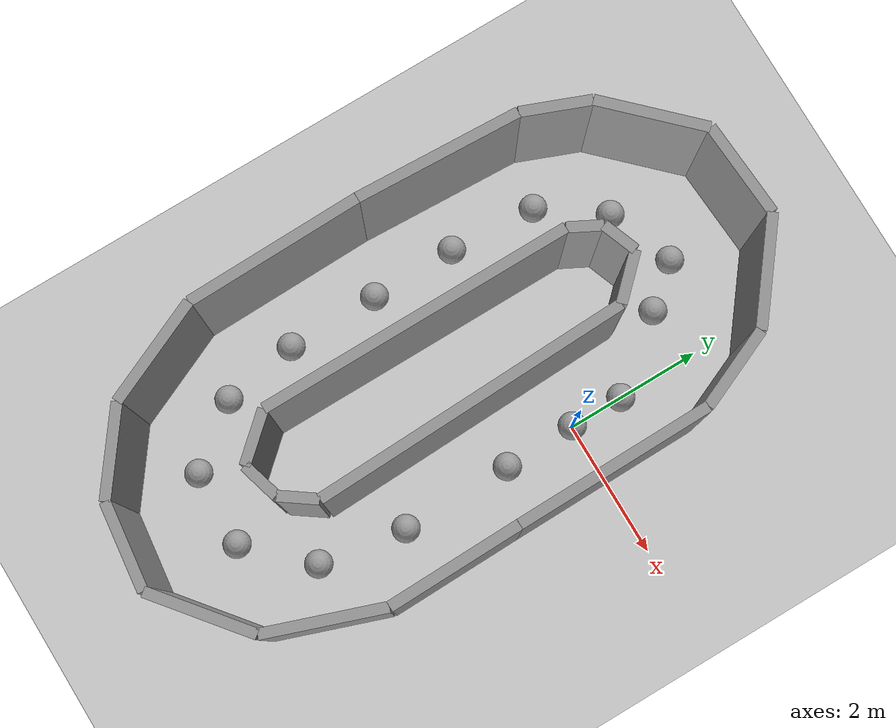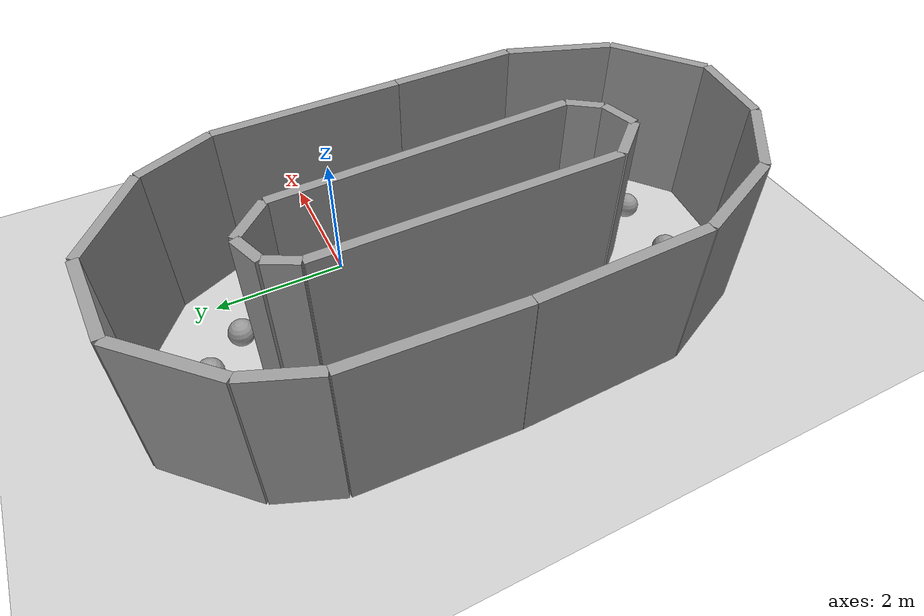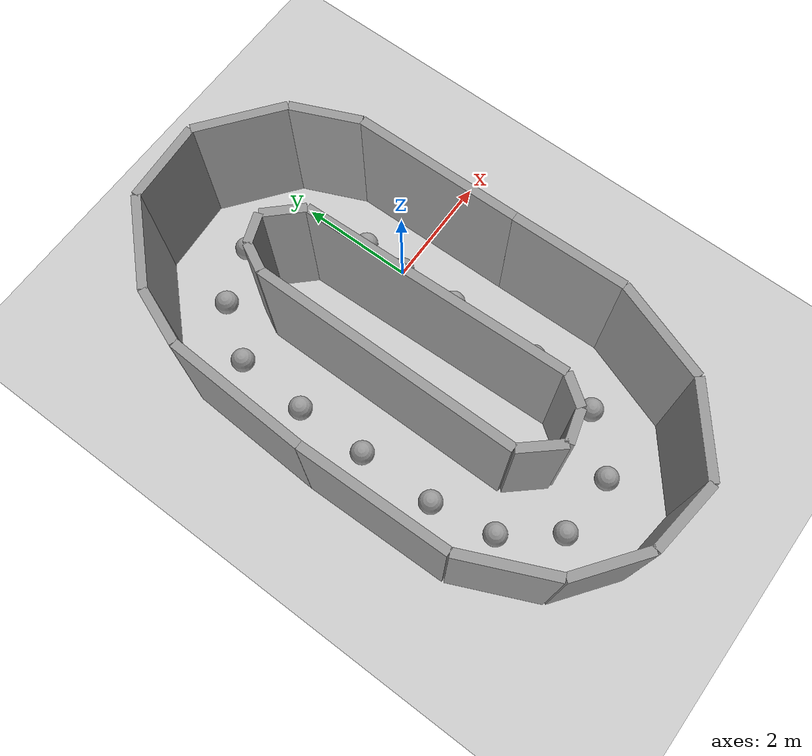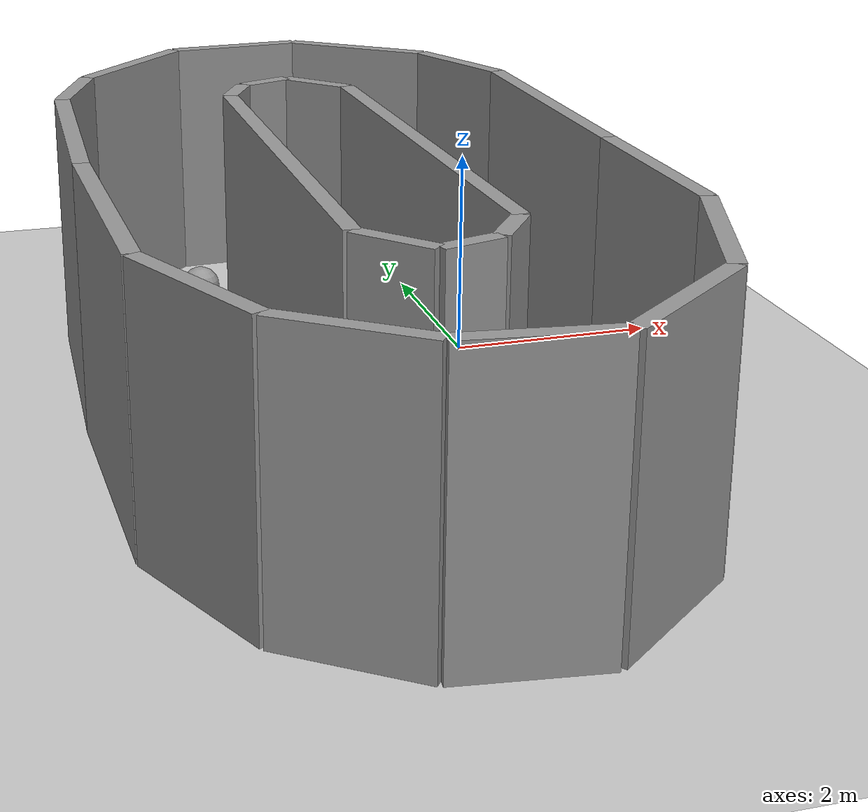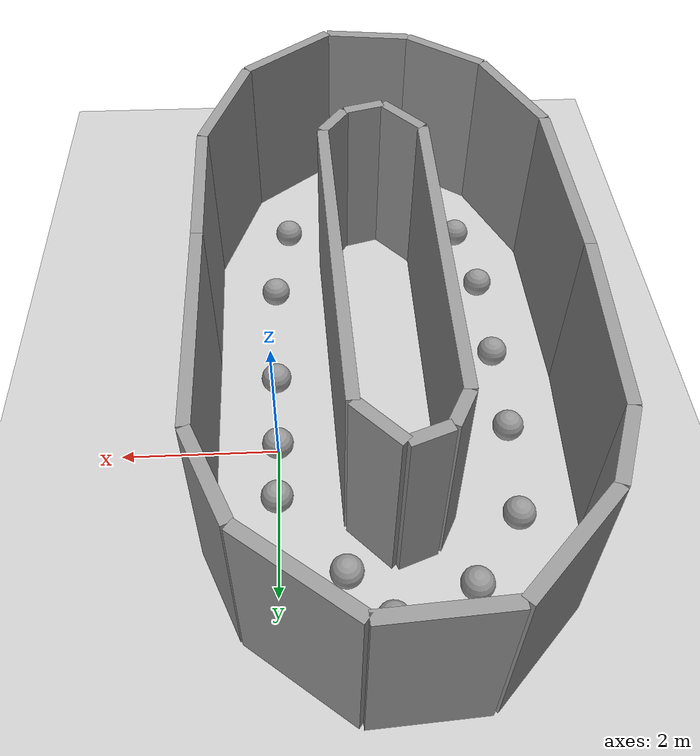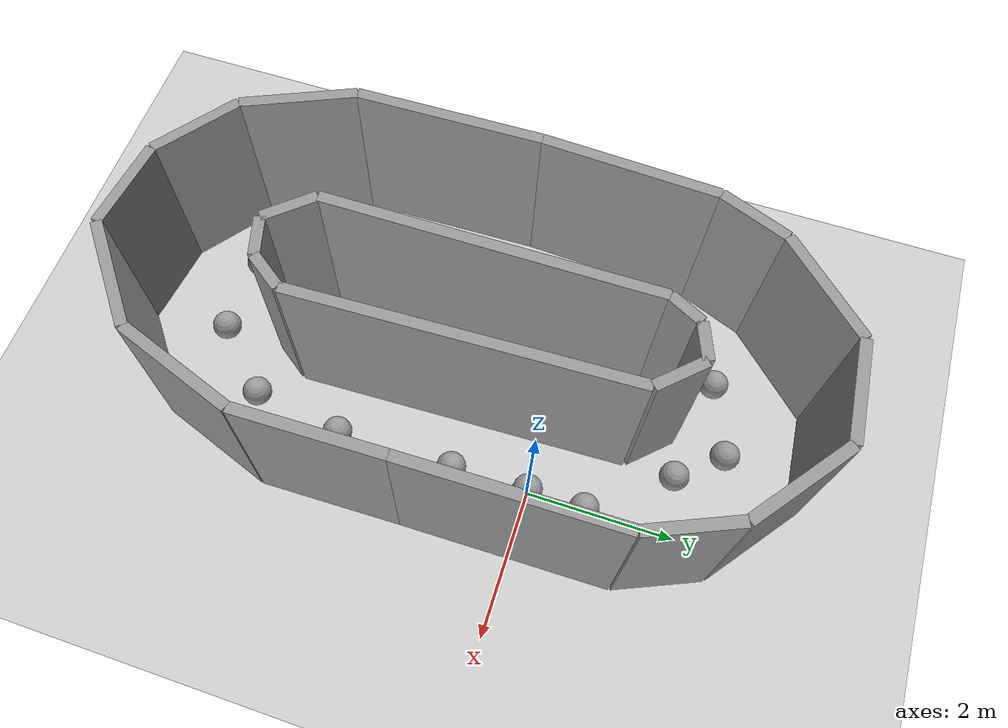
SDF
<sdf version='1.6'>
    <world name='default'>
      <light name='sun' type='directional'>
        <cast_shadows>1</cast_shadows>
        <pose frame=''>0 0 10 0 -0 0</pose>
        <diffuse>0.8 0.8 0.8 1</diffuse>
        <specular>0.2 0.2 0.2 1</specular>
        <attenuation>
          <range>1000</range>
          <constant>0.9</constant>
          <linear>0.01</linear>
          <quadratic>0.001</quadratic>
        </attenuation>
        <direction>-0.5 0.1 -0.9</direction>
      </light>
      <model name='ground_plane'>
        <static>1</static>
        <link name='link'>
          <collision name='collision'>
            <geometry>
              <plane>
                <normal>0 0 1</normal>
                <size>100 100</size>
              </plane>
            </geometry>
            <surface>
              <friction>
                <ode>
                  <mu>100</mu>
                  <mu2>50</mu2>
                </ode>
                <torsional>
                  <ode/>
                </torsional>
              </friction>
              <contact>
                <ode/>
              </contact>
              <bounce/>
            </surface>
            <max_contacts>10</max_contacts>
          </collision>
          <visual name='visual'>
            <cast_shadows>0</cast_shadows>
            <geometry>
              <plane>
                <normal>0 0 1</normal>
                <size>100 100</size>
              </plane>
            </geometry>
            <material>
              <script>
                <uri>file://media/materials/scripts/gazebo.material</uri>
                <name>Gazebo/Grey</name>
              </script>
            </material>
          </visual>
          <self_collide>0</self_collide>
          <enable_wind>0</enable_wind>
          <kinematic>0</kinematic>
        </link>
      </model>
      <gravity>0 0 -9.8</gravity>
      <magnetic_field>6e-06 2.3e-05 -4.2e-05</magnetic_field>
      <atmosphere type='adiabatic'/>
      <physics name='default_physics' default='0' type='ode'>
        <max_step_size>0.001</max_step_size>
        <real_time_factor>1</real_time_factor>
        <real_time_update_rate>1000</real_time_update_rate>
      </physics>
      <scene>
        <ambient>0.4 0.4 0.4 1</ambient>
        <background>0.7 0.7 0.7 1</background>
        <shadows>1</shadows>
      </scene>
      <wind/>
      <spherical_coordinates>
        <surface_model>EARTH_WGS84</surface_model>
        <latitude_deg>0</latitude_deg>
        <longitude_deg>0</longitude_deg>
        <elevation>0</elevation>
        <heading_deg>0</heading_deg>
      </spherical_coordinates>
      <model name='track2'>
        <pose frame=''>0 0 0 0 -0 0</pose>
        <link name='wall_000'>
                <collision name='wall_000_Collision'>
                <geometry>
                    <box>
                    <size>1.195634 0.15 2.5</size>
                    </box>
                </geometry>
                <pose frame=''>0 0 1.25 0 -0 0</pose>
                <max_contacts>10</max_contacts>
                <surface>
                    <contact>
                    <ode/>
                    </contact>
                    <bounce/>
                    <friction>
                    <torsional>
                        <ode/>
                    </torsional>
                    <ode/>
                    </friction>
                </surface>
                </collision>
                <visual name='wall_000_Visual'>
                <pose frame=''>0 0 1.25 0 -0 0</pose>
                <geometry>
                    <box>
                    <size>1.195634 0.15 2.5</size>
                    </box>
                </geometry>
                <material>
                    <script>
                    <uri>file://media/materials/scripts/gazebo.material</uri>
                    <name>Gazebo/Grey</name>
                    </script>
                    <ambient>1 1 1 1</ambient>
                </material>
                <meta>
                    <layer>0</layer>
                </meta>
                </visual>
                <pose frame=''>0.586740 1.912500 0 0 -0 -1.157576</pose>
                <self_collide>0</self_collide>
                <enable_wind>0</enable_wind>
                <kinematic>0</kinematic>
            </link>
            <link name='wall_001'>
                <collision name='wall_001_Collision'>
                <geometry>
                    <box>
                    <size>1.548632 0.15 2.5</size>
                    </box>
                </geometry>
                <pose frame=''>0 0 1.25 0 -0 0</pose>
                <max_contacts>10</max_contacts>
                <surface>
                    <contact>
                    <ode/>
                    </contact>
                    <bounce/>
                    <friction>
                    <torsional>
                        <ode/>
                    </torsional>
                    <ode/>
                    </friction>
                </surface>
                </collision>
                <visual name='wall_001_Visual'>
                <pose frame=''>0 0 1.25 0 -0 0</pose>
                <geometry>
                    <box>
                    <size>1.548632 0.15 2.5</size>
                    </box>
                </geometry>
                <material>
                    <script>
                    <uri>file://media/materials/scripts/gazebo.material</uri>
                    <name>Gazebo/Grey</name>
                    </script>
                    <ambient>1 1 1 1</ambient>
                </material>
                <meta>
                    <layer>0</layer>
                </meta>
                </visual>
                <pose frame=''>-0.266760 2.932500 0 0 -0 -0.656333</pose>
                <self_collide>0</self_collide>
                <enable_wind>0</enable_wind>
                <kinematic>0</kinematic>
            </link>
            <link name='wall_002'>
                <collision name='wall_002_Collision'>
                <geometry>
                    <box>
                    <size>1.362576 0.15 2.5</size>
                    </box>
                </geometry>
                <pose frame=''>0 0 1.25 0 -0 0</pose>
                <max_contacts>10</max_contacts>
                <surface>
                    <contact>
                    <ode/>
                    </contact>
                    <bounce/>
                    <friction>
                    <torsional>
                        <ode/>
                    </torsional>
                    <ode/>
                    </friction>
                </surface>
                </collision>
                <visual name='wall_002_Visual'>
                <pose frame=''>0 0 1.25 0 -0 0</pose>
                <geometry>
                    <box>
                    <size>1.362576 0.15 2.5</size>
                    </box>
                </geometry>
                <material>
                    <script>
                    <uri>file://media/materials/scripts/gazebo.material</uri>
                    <name>Gazebo/Grey</name>
                    </script>
                    <ambient>1 1 1 1</ambient>
                </material>
                <meta>
                    <layer>0</layer>
                </meta>
                </visual>
                <pose frame=''>-1.560000 3.360000 0 0 -0 0.066100</pose>
                <self_collide>0</self_collide>
                <enable_wind>0</enable_wind>
                <kinematic>0</kinematic>
            </link>
            <link name='wall_003'>
                <collision name='wall_003_Collision'>
                <geometry>
                    <box>
                    <size>1.558364 0.15 2.5</size>
                    </box>
                </geometry>
                <pose frame=''>0 0 1.25 0 -0 0</pose>
                <max_contacts>10</max_contacts>
                <surface>
                    <contact>
                    <ode/>
                    </contact>
                    <bounce/>
                    <friction>
                    <torsional>
                        <ode/>
                    </torsional>
                    <ode/>
                    </friction>
                </surface>
                </collision>
                <visual name='wall_003_Visual'>
                <pose frame=''>0 0 1.25 0 -0 0</pose>
                <geometry>
                    <box>
                    <size>1.558364 0.15 2.5</size>
                    </box>
                </geometry>
                <material>
                    <script>
                    <uri>file://media/materials/scripts/gazebo.material</uri>
                    <name>Gazebo/Grey</name>
                    </script>
                    <ambient>1 1 1 1</ambient>
                </material>
                <meta>
                    <layer>0</layer>
                </meta>
                </visual>
                <pose frame=''>-2.786700 2.760000 0 0 -0 0.792749</pose>
                <self_collide>0</self_collide>
                <enable_wind>0</enable_wind>
                <kinematic>0</kinematic>
            </link>
            <link name='wall_004'>
                <collision name='wall_004_Collision'>
                <geometry>
                    <box>
                    <size>0.983273 0.15 2.5</size>
                    </box>
                </geometry>
                <pose frame=''>0 0 1.25 0 -0 0</pose>
                <max_contacts>10</max_contacts>
                <surface>
                    <contact>
                    <ode/>
                    </contact>
                    <bounce/>
                    <friction>
                    <torsional>
                        <ode/>
                    </torsional>
                    <ode/>
                    </friction>
                </surface>
                </collision>
                <visual name='wall_004_Visual'>
                <pose frame=''>0 0 1.25 0 -0 0</pose>
                <geometry>
                    <box>
                    <size>0.983273 0.15 2.5</size>
                    </box>
                </geometry>
                <material>
                    <script>
                    <uri>file://media/materials/scripts/gazebo.material</uri>
                    <name>Gazebo/Grey</name>
                    </script>
                    <ambient>1 1 1 1</ambient>
                </material>
                <meta>
                    <layer>0</layer>
                </meta>
                </visual>
                <pose frame=''>-3.513600 1.747500 0 0 -0 1.195956</pose>
                <self_collide>0</self_collide>
                <enable_wind>0</enable_wind>
                <kinematic>0</kinematic>
            </link>
            <link name='wall_005'>
                <collision name='wall_005_Collision'>
                <geometry>
                    <box>
                    <size>2.372378 0.15 2.5</size>
                    </box>
                </geometry>
                <pose frame=''>0 0 1.25 0 -0 0</pose>
                <max_contacts>10</max_contacts>
                <surface>
                    <contact>
                    <ode/>
                    </contact>
                    <bounce/>
                    <friction>
                    <torsional>
                        <ode/>
                    </torsional>
                    <ode/>
                    </friction>
                </surface>
                </collision>
                <visual name='wall_005_Visual'>
                <pose frame=''>0 0 1.25 0 -0 0</pose>
                <geometry>
                    <box>
                    <size>2.372378 0.15 2.5</size>
                    </box>
                </geometry>
                <material>
                    <script>
                    <uri>file://media/materials/scripts/gazebo.material</uri>
                    <name>Gazebo/Grey</name>
                    </script>
                    <ambient>1 1 1 1</ambient>
                </material>
                <meta>
                    <layer>0</layer>
                </meta>
                </visual>
                <pose frame=''>-3.746700 0.105000 0 0 -0 1.526016</pose>
                <self_collide>0</self_collide>
                <enable_wind>0</enable_wind>
                <kinematic>0</kinematic>
            </link>
            <link name='wall_006'>
                <collision name='wall_006_Collision'>
                <geometry>
                    <box>
                    <size>2.535562 0.15 2.5</size>
                    </box>
                </geometry>
                <pose frame=''>0 0 1.25 0 -0 0</pose>
                <max_contacts>10</max_contacts>
                <surface>
                    <contact>
                    <ode/>
                    </contact>
                    <bounce/>
                    <friction>
                    <torsional>
                        <ode/>
                    </torsional>
                    <ode/>
                    </friction>
                </surface>
                </collision>
                <visual name='wall_006_Visual'>
                <pose frame=''>0 0 1.25 0 -0 0</pose>
                <geometry>
                    <box>
                    <size>2.535562 0.15 2.5</size>
                    </box>
                </geometry>
                <material>
                    <script>
                    <uri>file://media/materials/scripts/gazebo.material</uri>
                    <name>Gazebo/Grey</name>
                    </script>
                    <ambient>1 1 1 1</ambient>
                </material>
                <meta>
                    <layer>0</layer>
                </meta>
                </visual>
                <pose frame=''>-3.773100 -2.347500 0 0 -0 1.591858</pose>
                <self_collide>0</self_collide>
                <enable_wind>0</enable_wind>
                <kinematic>0</kinematic>
            </link>
            <link name='wall_007'>
                <collision name='wall_007_Collision'>
                <geometry>
                    <box>
                    <size>1.561958 0.15 2.5</size>
                    </box>
                </geometry>
                <pose frame=''>0 0 1.25 0 -0 0</pose>
                <max_contacts>10</max_contacts>
                <surface>
                    <contact>
                    <ode/>
                    </contact>
                    <bounce/>
                    <friction>
                    <torsional>
                        <ode/>
                    </torsional>
                    <ode/>
                    </friction>
                </surface>
                </collision>
                <visual name='wall_007_Visual'>
                <pose frame=''>0 0 1.25 0 -0 0</pose>
                <geometry>
                    <box>
                    <size>1.561958 0.15 2.5</size>
                    </box>
                </geometry>
                <material>
                    <script>
                    <uri>file://media/materials/scripts/gazebo.material</uri>
                    <name>Gazebo/Grey</name>
                    </script>
                    <ambient>1 1 1 1</ambient>
                </material>
                <meta>
                    <layer>0</layer>
                </meta>
                </visual>
                <pose frame=''>-3.426600 -4.327500 0 0 -0 1.992687</pose>
                <self_collide>0</self_collide>
                <enable_wind>0</enable_wind>
                <kinematic>0</kinematic>
            </link>
            <link name='wall_008'>
                <collision name='wall_008_Collision'>
                <geometry>
                    <box>
                    <size>1.280286 0.15 2.5</size>
                    </box>
                </geometry>
                <pose frame=''>0 0 1.25 0 -0 0</pose>
                <max_contacts>10</max_contacts>
                <surface>
                    <contact>
                    <ode/>
                    </contact>
                    <bounce/>
                    <friction>
                    <torsional>
                        <ode/>
                    </torsional>
                    <ode/>
                    </friction>
                </surface>
                </collision>
                <visual name='wall_008_Visual'>
                <pose frame=''>0 0 1.25 0 -0 0</pose>
                <geometry>
                    <box>
                    <size>1.280286 0.15 2.5</size>
                    </box>
                </geometry>
                <material>
                    <script>
                    <uri>file://media/materials/scripts/gazebo.material</uri>
                    <name>Gazebo/Grey</name>
                    </script>
                    <ambient>1 1 1 1</ambient>
                </material>
                <meta>
                    <layer>0</layer>
                </meta>
                </visual>
                <pose frame=''>-2.593500 -5.422500 0 0 -0 2.501185</pose>
                <self_collide>0</self_collide>
                <enable_wind>0</enable_wind>
                <kinematic>0</kinematic>
            </link>
            <link name='wall_009'>
                <collision name='wall_009_Collision'>
                <geometry>
                    <box>
                    <size>1.236135 0.15 2.5</size>
                    </box>
                </geometry>
                <pose frame=''>0 0 1.25 0 -0 0</pose>
                <max_contacts>10</max_contacts>
                <surface>
                    <contact>
                    <ode/>
                    </contact>
                    <bounce/>
                    <friction>
                    <torsional>
                        <ode/>
                    </torsional>
                    <ode/>
                    </friction>
                </surface>
                </collision>
                <visual name='wall_009_Visual'>
                <pose frame=''>0 0 1.25 0 -0 0</pose>
                <geometry>
                    <box>
                    <size>1.236135 0.15 2.5</size>
                    </box>
                </geometry>
                <material>
                    <script>
                    <uri>file://media/materials/scripts/gazebo.material</uri>
                    <name>Gazebo/Grey</name>
                    </script>
                    <ambient>1 1 1 1</ambient>
                </material>
                <meta>
                    <layer>0</layer>
                </meta>
                </visual>
                <pose frame=''>-1.466700 -5.880000 0 0 -0 3.019947</pose>
                <self_collide>0</self_collide>
                <enable_wind>0</enable_wind>
                <kinematic>0</kinematic>
            </link>
            <link name='wall_010'>
                <collision name='wall_010_Collision'>
                <geometry>
                    <box>
                    <size>1.536656 0.15 2.5</size>
                    </box>
                </geometry>
                <pose frame=''>0 0 1.25 0 -0 0</pose>
                <max_contacts>10</max_contacts>
                <surface>
                    <contact>
                    <ode/>
                    </contact>
                    <bounce/>
                    <friction>
                    <torsional>
                        <ode/>
                    </torsional>
                    <ode/>
                    </friction>
                </surface>
                </collision>
                <visual name='wall_010_Visual'>
                <pose frame=''>0 0 1.25 0 -0 0</pose>
                <geometry>
                    <box>
                    <size>1.536656 0.15 2.5</size>
                    </box>
                </geometry>
                <material>
                    <script>
                    <uri>file://media/materials/scripts/gazebo.material</uri>
                    <name>Gazebo/Grey</name>
                    </script>
                    <ambient>1 1 1 1</ambient>
                </material>
                <meta>
                    <layer>0</layer>
                </meta>
                </visual>
                <pose frame=''>-0.253260 -5.475000 0 0 -0 -2.466803</pose>
                <self_collide>0</self_collide>
                <enable_wind>0</enable_wind>
                <kinematic>0</kinematic>
            </link>
            <link name='wall_011'>
                <collision name='wall_011_Collision'>
                <geometry>
                    <box>
                    <size>1.685708 0.15 2.5</size>
                    </box>
                </geometry>
                <pose frame=''>0 0 1.25 0 -0 0</pose>
                <max_contacts>10</max_contacts>
                <surface>
                    <contact>
                    <ode/>
                    </contact>
                    <bounce/>
                    <friction>
                    <torsional>
                        <ode/>
                    </torsional>
                    <ode/>
                    </friction>
                </surface>
                </collision>
                <visual name='wall_011_Visual'>
                <pose frame=''>0 0 1.25 0 -0 0</pose>
                <geometry>
                    <box>
                    <size>1.685708 0.15 2.5</size>
                    </box>
                </geometry>
                <material>
                    <script>
                    <uri>file://media/materials/scripts/gazebo.material</uri>
                    <name>Gazebo/Grey</name>
                    </script>
                    <ambient>1 1 1 1</ambient>
                </material>
                <meta>
                    <layer>0</layer>
                </meta>
                </visual>
                <pose frame=''>0.626640 -4.200000 0 0 -0 -1.909386</pose>
                <self_collide>0</self_collide>
                <enable_wind>0</enable_wind>
                <kinematic>0</kinematic>
            </link>
            <link name='wall_012'>
                <collision name='wall_012_Collision'>
                <geometry>
                    <box>
                    <size>1.935418 0.15 2.5</size>
                    </box>
                </geometry>
                <pose frame=''>0 0 1.25 0 -0 0</pose>
                <max_contacts>10</max_contacts>
                <surface>
                    <contact>
                    <ode/>
                    </contact>
                    <bounce/>
                    <friction>
                    <torsional>
                        <ode/>
                    </torsional>
                    <ode/>
                    </friction>
                </surface>
                </collision>
                <visual name='wall_012_Visual'>
                <pose frame=''>0 0 1.25 0 -0 0</pose>
                <geometry>
                    <box>
                    <size>1.935418 0.15 2.5</size>
                    </box>
                </geometry>
                <material>
                    <script>
                    <uri>file://media/materials/scripts/gazebo.material</uri>
                    <name>Gazebo/Grey</name>
                    </script>
                    <ambient>1 1 1 1</ambient>
                </material>
                <meta>
                    <layer>0</layer>
                </meta>
                </visual>
                <pose frame=''>0.886500 -2.437500 0 0 -0 -1.550024</pose>
                <self_collide>0</self_collide>
                <enable_wind>0</enable_wind>
                <kinematic>0</kinematic>
            </link>
            <link name='wall_013'>
                <collision name='wall_013_Collision'>
                <geometry>
                    <box>
                    <size>2.835277 0.15 2.5</size>
                    </box>
                </geometry>
                <pose frame=''>0 0 1.25 0 -0 0</pose>
                <max_contacts>10</max_contacts>
                <surface>
                    <contact>
                    <ode/>
                    </contact>
                    <bounce/>
                    <friction>
                    <torsional>
                        <ode/>
                    </torsional>
                    <ode/>
                    </friction>
                </surface>
                </collision>
                <visual name='wall_013_Visual'>
                <pose frame=''>0 0 1.25 0 -0 0</pose>
                <geometry>
                    <box>
                    <size>2.835277 0.15 2.5</size>
                    </box>
                </geometry>
                <material>
                    <script>
                    <uri>file://media/materials/scripts/gazebo.material</uri>
                    <name>Gazebo/Grey</name>
                    </script>
                    <ambient>1 1 1 1</ambient>
                </material>
                <meta>
                    <layer>0</layer>
                </meta>
                </visual>
                <pose frame=''>0.846600 -0.052500 0 0 -0 -1.556829</pose>
                <self_collide>0</self_collide>
                <enable_wind>0</enable_wind>
                <kinematic>0</kinematic>
            </link>
            <link name='wall_014'>
                <collision name='wall_014_Collision'>
                <geometry>
                    <box>
                    <size>0.729845 0.15 2.5</size>
                    </box>
                </geometry>
                <pose frame=''>0 0 1.25 0 -0 0</pose>
                <max_contacts>10</max_contacts>
                <surface>
                    <contact>
                    <ode/>
                    </contact>
                    <bounce/>
                    <friction>
                    <torsional>
                        <ode/>
                    </torsional>
                    <ode/>
                    </friction>
                </surface>
                </collision>
                <visual name='wall_014_Visual'>
                <pose frame=''>0 0 1.25 0 -0 0</pose>
                <geometry>
                    <box>
                    <size>0.729845 0.15 2.5</size>
                    </box>
                </geometry>
                <material>
                    <script>
                    <uri>file://media/materials/scripts/gazebo.material</uri>
                    <name>Gazebo/Grey</name>
                    </script>
                    <ambient>1 1 1 1</ambient>
                </material>
                <meta>
                    <layer>0</layer>
                </meta>
                </visual>
                <pose frame=''>-1.119900 1.372500 0 0 -0 -0.802838</pose>
                <self_collide>0</self_collide>
                <enable_wind>0</enable_wind>
                <kinematic>0</kinematic>
            </link>
            <link name='wall_015'>
                <collision name='wall_015_Collision'>
                <geometry>
                    <box>
                    <size>0.512640 0.15 2.5</size>
                    </box>
                </geometry>
                <pose frame=''>0 0 1.25 0 -0 0</pose>
                <max_contacts>10</max_contacts>
                <surface>
                    <contact>
                    <ode/>
                    </contact>
                    <bounce/>
                    <friction>
                    <torsional>
                        <ode/>
                    </torsional>
                    <ode/>
                    </friction>
                </surface>
                </collision>
                <visual name='wall_015_Visual'>
                <pose frame=''>0 0 1.25 0 -0 0</pose>
                <geometry>
                    <box>
                    <size>0.512640 0.15 2.5</size>
                    </box>
                </geometry>
                <material>
                    <script>
                    <uri>file://media/materials/scripts/gazebo.material</uri>
                    <name>Gazebo/Grey</name>
                    </script>
                    <ambient>1 1 1 1</ambient>
                </material>
                <meta>
                    <layer>0</layer>
                </meta>
                </visual>
                <pose frame=''>-1.613400 1.545000 0 0 -0 0.358771</pose>
                <self_collide>0</self_collide>
                <enable_wind>0</enable_wind>
                <kinematic>0</kinematic>
            </link>
            <link name='wall_016'>
                <collision name='wall_016_Collision'>
                <geometry>
                    <box>
                    <size>0.490574 0.15 2.5</size>
                    </box>
                </geometry>
                <pose frame=''>0 0 1.25 0 -0 0</pose>
                <max_contacts>10</max_contacts>
                <surface>
                    <contact>
                    <ode/>
                    </contact>
                    <bounce/>
                    <friction>
                    <torsional>
                        <ode/>
                    </torsional>
                    <ode/>
                    </friction>
                </surface>
                </collision>
                <visual name='wall_016_Visual'>
                <pose frame=''>0 0 1.25 0 -0 0</pose>
                <geometry>
                    <box>
                    <size>0.490574 0.15 2.5</size>
                    </box>
                </geometry>
                <material>
                    <script>
                    <uri>file://media/materials/scripts/gazebo.material</uri>
                    <name>Gazebo/Grey</name>
                    </script>
                    <ambient>1 1 1 1</ambient>
                </material>
                <meta>
                    <layer>0</layer>
                </meta>
                </visual>
                <pose frame=''>-1.966800 1.237500 0 0 -0 1.090192</pose>
                <self_collide>0</self_collide>
                <enable_wind>0</enable_wind>
                <kinematic>0</kinematic>
            </link>
            <link name='wall_017'>
                <collision name='wall_017_Collision'>
                <geometry>
                    <box>
                    <size>4.515021 0.15 2.5</size>
                    </box>
                </geometry>
                <pose frame=''>0 0 1.25 0 -0 0</pose>
                <max_contacts>10</max_contacts>
                <surface>
                    <contact>
                    <ode/>
                    </contact>
                    <bounce/>
                    <friction>
                    <torsional>
                        <ode/>
                    </torsional>
                    <ode/>
                    </friction>
                </surface>
                </collision>
                <visual name='wall_017_Visual'>
                <pose frame=''>0 0 1.25 0 -0 0</pose>
                <geometry>
                    <box>
                    <size>4.515021 0.15 2.5</size>
                    </box>
                </geometry>
                <material>
                    <script>
                    <uri>file://media/materials/scripts/gazebo.material</uri>
                    <name>Gazebo/Grey</name>
                    </script>
                    <ambient>1 1 1 1</ambient>
                </material>
                <meta>
                    <layer>0</layer>
                </meta>
                </visual>
                <pose frame=''>-2.073300 -1.237500 0 0 -0 1.573853</pose>
                <self_collide>0</self_collide>
                <enable_wind>0</enable_wind>
                <kinematic>0</kinematic>
            </link>
            <link name='wall_018'>
                <collision name='wall_018_Collision'>
                <geometry>
                    <box>
                    <size>0.762457 0.15 2.5</size>
                    </box>
                </geometry>
                <pose frame=''>0 0 1.25 0 -0 0</pose>
                <max_contacts>10</max_contacts>
                <surface>
                    <contact>
                    <ode/>
                    </contact>
                    <bounce/>
                    <friction>
                    <torsional>
                        <ode/>
                    </torsional>
                    <ode/>
                    </friction>
                </surface>
                </collision>
                <visual name='wall_018_Visual'>
                <pose frame=''>0 0 1.25 0 -0 0</pose>
                <geometry>
                    <box>
                    <size>0.762457 0.15 2.5</size>
                    </box>
                </geometry>
                <material>
                    <script>
                    <uri>file://media/materials/scripts/gazebo.material</uri>
                    <name>Gazebo/Grey</name>
                    </script>
                    <ambient>1 1 1 1</ambient>
                </material>
                <meta>
                    <layer>0</layer>
                </meta>
                </visual>
                <pose frame=''>-1.813200 -3.780000 0 0 -0 2.297177</pose>
                <self_collide>0</self_collide>
                <enable_wind>0</enable_wind>
                <kinematic>0</kinematic>
            </link>
            <link name='wall_019'>
                <collision name='wall_019_Collision'>
                <geometry>
                    <box>
                    <size>0.554090 0.15 2.5</size>
                    </box>
                </geometry>
                <pose frame=''>0 0 1.25 0 -0 0</pose>
                <max_contacts>10</max_contacts>
                <surface>
                    <contact>
                    <ode/>
                    </contact>
                    <bounce/>
                    <friction>
                    <torsional>
                        <ode/>
                    </torsional>
                    <ode/>
                    </friction>
                </surface>
                </collision>
                <visual name='wall_019_Visual'>
                <pose frame=''>0 0 1.25 0 -0 0</pose>
                <geometry>
                    <box>
                    <size>0.554090 0.15 2.5</size>
                    </box>
                </geometry>
                <material>
                    <script>
                    <uri>file://media/materials/scripts/gazebo.material</uri>
                    <name>Gazebo/Grey</name>
                    </script>
                    <ambient>1 1 1 1</ambient>
                </material>
                <meta>
                    <layer>0</layer>
                </meta>
                </visual>
                <pose frame=''>-1.293300 -3.990000 0 0 -0 -2.867458</pose>
                <self_collide>0</self_collide>
                <enable_wind>0</enable_wind>
                <kinematic>0</kinematic>
            </link>
            <link name='wall_020'>
                <collision name='wall_020_Collision'>
                <geometry>
                    <box>
                    <size>0.552062 0.15 2.5</size>
                    </box>
                </geometry>
                <pose frame=''>0 0 1.25 0 -0 0</pose>
                <max_contacts>10</max_contacts>
                <surface>
                    <contact>
                    <ode/>
                    </contact>
                    <bounce/>
                    <friction>
                    <torsional>
                        <ode/>
                    </torsional>
                    <ode/>
                    </friction>
                </surface>
                </collision>
                <visual name='wall_020_Visual'>
                <pose frame=''>0 0 1.25 0 -0 0</pose>
                <geometry>
                    <box>
                    <size>0.552062 0.15 2.5</size>
                    </box>
                </geometry>
                <material>
                    <script>
                    <uri>file://media/materials/scripts/gazebo.material</uri>
                    <name>Gazebo/Grey</name>
                    </script>
                    <ambient>1 1 1 1</ambient>
                </material>
                <meta>
                    <layer>0</layer>
                </meta>
                </visual>
                <pose frame=''>-0.866700 -3.690000 0 0 -0 -2.188645</pose>
                <self_collide>0</self_collide>
                <enable_wind>0</enable_wind>
                <kinematic>0</kinematic>
            </link>
            <link name='wall_021'>
                <collision name='wall_021_Collision'>
                <geometry>
                    <box>
                    <size>4.577783 0.15 2.5</size>
                    </box>
                </geometry>
                <pose frame=''>0 0 1.25 0 -0 0</pose>
                <max_contacts>10</max_contacts>
                <surface>
                    <contact>
                    <ode/>
                    </contact>
                    <bounce/>
                    <friction>
                    <torsional>
                        <ode/>
                    </torsional>
                    <ode/>
                    </friction>
                </surface>
                </collision>
                <visual name='wall_021_Visual'>
                <pose frame=''>0 0 1.25 0 -0 0</pose>
                <geometry>
                    <box>
                    <size>4.577783 0.15 2.5</size>
                    </box>
                </geometry>
                <material>
                    <script>
                    <uri>file://media/materials/scripts/gazebo.material</uri>
                    <name>Gazebo/Grey</name>
                    </script>
                    <ambient>1 1 1 1</ambient>
                </material>
                <meta>
                    <layer>0</layer>
                </meta>
                </visual>
                <pose frame=''>-0.786600 -1.177500 0 0 -0 -1.535925</pose>
                <self_collide>0</self_collide>
                <enable_wind>0</enable_wind>
                <kinematic>0</kinematic>
            </link>
            <static>1</static>
      </model>
      <gui fullscreen='0'>
        <camera name='user_camera'>
          <pose frame=''>-9.88167 -5.87841 72.8661 3.14159 1.57079 3.14159</pose>
          <view_controller>orbit</view_controller>
          <projection_type>perspective</projection_type>
        </camera>
      </gui>
      <model name='unit_sphere_0_0'>
      <pose frame=''>0.000000 0.000000 0.200000 0 -0 0</pose>
      <link name='link'>
        <inertial>
          <mass>1</mass>
          <inertia>
            <ixx>0.1</ixx>
            <ixy>0</ixy>
            <ixz>0</ixz>
            <iyy>0.1</iyy>
            <iyz>0</iyz>
            <izz>0.1</izz>
          </inertia>
        </inertial>
        <collision name='collision'>
          <geometry>
            <sphere>
              <radius>0.200000</radius>
            </sphere>
          </geometry>
          <max_contacts>10</max_contacts>
          <surface>
            <contact>
              <ode/>
            </contact>
            <bounce/>
            <friction>
              <torsional>
                <ode/>
              </torsional>
              <ode/>
            </friction>
          </surface>
        </collision>
        <visual name='visual'>
          <geometry>
            <sphere>
              <radius>0.200000</radius>
            </sphere>
          </geometry>
          <material>
            <script>
              <name>Gazebo/Grey</name>
              <uri>file://media/materials/scripts/gazebo.material</uri>
            </script>
          </material>
        </visual>
        <self_collide>0</self_collide>
        <kinematic>0</kinematic>
        <gravity>1</gravity>
      </link>
    </model>
        <model name='unit_sphere_0_1'>
      <pose frame=''>0.010000 0.780000 0.200000 0 -0 0</pose>
      <link name='link'>
        <inertial>
          <mass>1</mass>
          <inertia>
            <ixx>0.1</ixx>
            <ixy>0</ixy>
            <ixz>0</ixz>
            <iyy>0.1</iyy>
            <iyz>0</iyz>
            <izz>0.1</izz>
          </inertia>
        </inertial>
        <collision name='collision'>
          <geometry>
            <sphere>
              <radius>0.200000</radius>
            </sphere>
          </geometry>
          <max_contacts>10</max_contacts>
          <surface>
            <contact>
              <ode/>
            </contact>
            <bounce/>
            <friction>
              <torsional>
                <ode/>
              </torsional>
              <ode/>
            </friction>
          </surface>
        </collision>
        <visual name='visual'>
          <geometry>
            <sphere>
              <radius>0.200000</radius>
            </sphere>
          </geometry>
          <material>
            <script>
              <name>Gazebo/Grey</name>
              <uri>file://media/materials/scripts/gazebo.material</uri>
            </script>
          </material>
        </visual>
        <self_collide>0</self_collide>
        <kinematic>0</kinematic>
        <gravity>1</gravity>
      </link>
    </model>
        <model name='unit_sphere_0_2'>
      <pose frame=''>-0.790000 1.800000 0.200000 0 -0 0</pose>
      <link name='link'>
        <inertial>
          <mass>1</mass>
          <inertia>
            <ixx>0.1</ixx>
            <ixy>0</ixy>
            <ixz>0</ixz>
            <iyy>0.1</iyy>
            <iyz>0</iyz>
            <izz>0.1</izz>
          </inertia>
        </inertial>
        <collision name='collision'>
          <geometry>
            <sphere>
              <radius>0.200000</radius>
            </sphere>
          </geometry>
          <max_contacts>10</max_contacts>
          <surface>
            <contact>
              <ode/>
            </contact>
            <bounce/>
            <friction>
              <torsional>
                <ode/>
              </torsional>
              <ode/>
            </friction>
          </surface>
        </collision>
        <visual name='visual'>
          <geometry>
            <sphere>
              <radius>0.200000</radius>
            </sphere>
          </geometry>
          <material>
            <script>
              <name>Gazebo/Grey</name>
              <uri>file://media/materials/scripts/gazebo.material</uri>
            </script>
          </material>
        </visual>
        <self_collide>0</self_collide>
        <kinematic>0</kinematic>
        <gravity>1</gravity>
      </link>
    </model>
        <model name='unit_sphere_0_3'>
      <pose frame=''>-1.280000 2.380000 0.200000 0 -0 0</pose>
      <link name='link'>
        <inertial>
          <mass>1</mass>
          <inertia>
            <ixx>0.1</ixx>
            <ixy>0</ixy>
            <ixz>0</ixz>
            <iyy>0.1</iyy>
            <iyz>0</iyz>
            <izz>0.1</izz>
          </inertia>
        </inertial>
        <collision name='collision'>
          <geometry>
            <sphere>
              <radius>0.200000</radius>
            </sphere>
          </geometry>
          <max_contacts>10</max_contacts>
          <surface>
            <contact>
              <ode/>
            </contact>
            <bounce/>
            <friction>
              <torsional>
                <ode/>
              </torsional>
              <ode/>
            </friction>
          </surface>
        </collision>
        <visual name='visual'>
          <geometry>
            <sphere>
              <radius>0.200000</radius>
            </sphere>
          </geometry>
          <material>
            <script>
              <name>Gazebo/Grey</name>
              <uri>file://media/materials/scripts/gazebo.material</uri>
            </script>
          </material>
        </visual>
        <self_collide>0</self_collide>
        <kinematic>0</kinematic>
        <gravity>1</gravity>
      </link>
    </model>
        <model name='unit_sphere_0_4'>
      <pose frame=''>-2.260000 2.010000 0.200000 0 -0 0</pose>
      <link name='link'>
        <inertial>
          <mass>1</mass>
          <inertia>
            <ixx>0.1</ixx>
            <ixy>0</ixy>
            <ixz>0</ixz>
            <iyy>0.1</iyy>
            <iyz>0</iyz>
            <izz>0.1</izz>
          </inertia>
        </inertial>
        <collision name='collision'>
          <geometry>
            <sphere>
              <radius>0.200000</radius>
            </sphere>
          </geometry>
          <max_contacts>10</max_contacts>
          <surface>
            <contact>
              <ode/>
            </contact>
            <bounce/>
            <friction>
              <torsional>
                <ode/>
              </torsional>
              <ode/>
            </friction>
          </surface>
        </collision>
        <visual name='visual'>
          <geometry>
            <sphere>
              <radius>0.200000</radius>
            </sphere>
          </geometry>
          <material>
            <script>
              <name>Gazebo/Grey</name>
              <uri>file://media/materials/scripts/gazebo.material</uri>
            </script>
          </material>
        </visual>
        <self_collide>0</self_collide>
        <kinematic>0</kinematic>
        <gravity>1</gravity>
      </link>
    </model>
        <model name='unit_sphere_0_5'>
      <pose frame=''>-2.890000 1.130000 0.200000 0 -0 0</pose>
      <link name='link'>
        <inertial>
          <mass>1</mass>
          <inertia>
            <ixx>0.1</ixx>
            <ixy>0</ixy>
            <ixz>0</ixz>
            <iyy>0.1</iyy>
            <iyz>0</iyz>
            <izz>0.1</izz>
          </inertia>
        </inertial>
        <collision name='collision'>
          <geometry>
            <sphere>
              <radius>0.200000</radius>
            </sphere>
          </geometry>
          <max_contacts>10</max_contacts>
          <surface>
            <contact>
              <ode/>
            </contact>
            <bounce/>
            <friction>
              <torsional>
                <ode/>
              </torsional>
              <ode/>
            </friction>
          </surface>
        </collision>
        <visual name='visual'>
          <geometry>
            <sphere>
              <radius>0.200000</radius>
            </sphere>
          </geometry>
          <material>
            <script>
              <name>Gazebo/Grey</name>
              <uri>file://media/materials/scripts/gazebo.material</uri>
            </script>
          </material>
        </visual>
        <self_collide>0</self_collide>
        <kinematic>0</kinematic>
        <gravity>1</gravity>
      </link>
    </model>
        <model name='unit_sphere_0_6'>
      <pose frame=''>-2.970000 -0.150000 0.200000 0 -0 0</pose>
      <link name='link'>
        <inertial>
          <mass>1</mass>
          <inertia>
            <ixx>0.1</ixx>
            <ixy>0</ixy>
            <ixz>0</ixz>
            <iyy>0.1</iyy>
            <iyz>0</iyz>
            <izz>0.1</izz>
          </inertia>
        </inertial>
        <collision name='collision'>
          <geometry>
            <sphere>
              <radius>0.200000</radius>
            </sphere>
          </geometry>
          <max_contacts>10</max_contacts>
          <surface>
            <contact>
              <ode/>
            </contact>
            <bounce/>
            <friction>
              <torsional>
                <ode/>
              </torsional>
              <ode/>
            </friction>
          </surface>
        </collision>
        <visual name='visual'>
          <geometry>
            <sphere>
              <radius>0.200000</radius>
            </sphere>
          </geometry>
          <material>
            <script>
              <name>Gazebo/Grey</name>
              <uri>file://media/materials/scripts/gazebo.material</uri>
            </script>
          </material>
        </visual>
        <self_collide>0</self_collide>
        <kinematic>0</kinematic>
        <gravity>1</gravity>
      </link>
    </model>
        <model name='unit_sphere_0_7'>
      <pose frame=''>-2.960000 -1.410000 0.200000 0 -0 0</pose>
      <link name='link'>
        <inertial>
          <mass>1</mass>
          <inertia>
            <ixx>0.1</ixx>
            <ixy>0</ixy>
            <ixz>0</ixz>
            <iyy>0.1</iyy>
            <iyz>0</iyz>
            <izz>0.1</izz>
          </inertia>
        </inertial>
        <collision name='collision'>
          <geometry>
            <sphere>
              <radius>0.200000</radius>
            </sphere>
          </geometry>
          <max_contacts>10</max_contacts>
          <surface>
            <contact>
              <ode/>
            </contact>
            <bounce/>
            <friction>
              <torsional>
                <ode/>
              </torsional>
              <ode/>
            </friction>
          </surface>
        </collision>
        <visual name='visual'>
          <geometry>
            <sphere>
              <radius>0.200000</radius>
            </sphere>
          </geometry>
          <material>
            <script>
              <name>Gazebo/Grey</name>
              <uri>file://media/materials/scripts/gazebo.material</uri>
            </script>
          </material>
        </visual>
        <self_collide>0</self_collide>
        <kinematic>0</kinematic>
        <gravity>1</gravity>
      </link>
    </model>
        <model name='unit_sphere_0_8'>
      <pose frame=''>-2.950000 -2.760000 0.200000 0 -0 0</pose>
      <link name='link'>
        <inertial>
          <mass>1</mass>
          <inertia>
            <ixx>0.1</ixx>
            <ixy>0</ixy>
            <ixz>0</ixz>
            <iyy>0.1</iyy>
            <iyz>0</iyz>
            <izz>0.1</izz>
          </inertia>
        </inertial>
        <collision name='collision'>
          <geometry>
            <sphere>
              <radius>0.200000</radius>
            </sphere>
          </geometry>
          <max_contacts>10</max_contacts>
          <surface>
            <contact>
              <ode/>
            </contact>
            <bounce/>
            <friction>
              <torsional>
                <ode/>
              </torsional>
              <ode/>
            </friction>
          </surface>
        </collision>
        <visual name='visual'>
          <geometry>
            <sphere>
              <radius>0.200000</radius>
            </sphere>
          </geometry>
          <material>
            <script>
              <name>Gazebo/Grey</name>
              <uri>file://media/materials/scripts/gazebo.material</uri>
            </script>
          </material>
        </visual>
        <self_collide>0</self_collide>
        <kinematic>0</kinematic>
        <gravity>1</gravity>
      </link>
    </model>
        <model name='unit_sphere_0_9'>
      <pose frame=''>-2.760000 -3.870000 0.200000 0 -0 0</pose>
      <link name='link'>
        <inertial>
          <mass>1</mass>
          <inertia>
            <ixx>0.1</ixx>
            <ixy>0</ixy>
            <ixz>0</ixz>
            <iyy>0.1</iyy>
            <iyz>0</iyz>
            <izz>0.1</izz>
          </inertia>
        </inertial>
        <collision name='collision'>
          <geometry>
            <sphere>
              <radius>0.200000</radius>
            </sphere>
          </geometry>
          <max_contacts>10</max_contacts>
          <surface>
            <contact>
              <ode/>
            </contact>
            <bounce/>
            <friction>
              <torsional>
                <ode/>
              </torsional>
              <ode/>
            </friction>
          </surface>
        </collision>
        <visual name='visual'>
          <geometry>
            <sphere>
              <radius>0.200000</radius>
            </sphere>
          </geometry>
          <material>
            <script>
              <name>Gazebo/Grey</name>
              <uri>file://media/materials/scripts/gazebo.material</uri>
            </script>
          </material>
        </visual>
        <self_collide>0</self_collide>
        <kinematic>0</kinematic>
        <gravity>1</gravity>
      </link>
    </model>
        <model name='unit_sphere_0_10'>
      <pose frame=''>-2.090000 -4.740000 0.200000 0 -0 0</pose>
      <link name='link'>
        <inertial>
          <mass>1</mass>
          <inertia>
            <ixx>0.1</ixx>
            <ixy>0</ixy>
            <ixz>0</ixz>
            <iyy>0.1</iyy>
            <iyz>0</iyz>
            <izz>0.1</izz>
          </inertia>
        </inertial>
        <collision name='collision'>
          <geometry>
            <sphere>
              <radius>0.200000</radius>
            </sphere>
          </geometry>
          <max_contacts>10</max_contacts>
          <surface>
            <contact>
              <ode/>
            </contact>
            <bounce/>
            <friction>
              <torsional>
                <ode/>
              </torsional>
              <ode/>
            </friction>
          </surface>
        </collision>
        <visual name='visual'>
          <geometry>
            <sphere>
              <radius>0.200000</radius>
            </sphere>
          </geometry>
          <material>
            <script>
              <name>Gazebo/Grey</name>
              <uri>file://media/materials/scripts/gazebo.material</uri>
            </script>
          </material>
        </visual>
        <self_collide>0</self_collide>
        <kinematic>0</kinematic>
        <gravity>1</gravity>
      </link>
    </model>
        <model name='unit_sphere_0_11'>
      <pose frame=''>-0.980000 -4.780000 0.200000 0 -0 0</pose>
      <link name='link'>
        <inertial>
          <mass>1</mass>
          <inertia>
            <ixx>0.1</ixx>
            <ixy>0</ixy>
            <ixz>0</ixz>
            <iyy>0.1</iyy>
            <iyz>0</iyz>
            <izz>0.1</izz>
          </inertia>
        </inertial>
        <collision name='collision'>
          <geometry>
            <sphere>
              <radius>0.200000</radius>
            </sphere>
          </geometry>
          <max_contacts>10</max_contacts>
          <surface>
            <contact>
              <ode/>
            </contact>
            <bounce/>
            <friction>
              <torsional>
                <ode/>
              </torsional>
              <ode/>
            </friction>
          </surface>
        </collision>
        <visual name='visual'>
          <geometry>
            <sphere>
              <radius>0.200000</radius>
            </sphere>
          </geometry>
          <material>
            <script>
              <name>Gazebo/Grey</name>
              <uri>file://media/materials/scripts/gazebo.material</uri>
            </script>
          </material>
        </visual>
        <self_collide>0</self_collide>
        <kinematic>0</kinematic>
        <gravity>1</gravity>
      </link>
    </model>
        <model name='unit_sphere_0_12'>
      <pose frame=''>-0.170000 -3.960000 0.200000 0 -0 0</pose>
      <link name='link'>
        <inertial>
          <mass>1</mass>
          <inertia>
            <ixx>0.1</ixx>
            <ixy>0</ixy>
            <ixz>0</ixz>
            <iyy>0.1</iyy>
            <iyz>0</iyz>
            <izz>0.1</izz>
          </inertia>
        </inertial>
        <collision name='collision'>
          <geometry>
            <sphere>
              <radius>0.200000</radius>
            </sphere>
          </geometry>
          <max_contacts>10</max_contacts>
          <surface>
            <contact>
              <ode/>
            </contact>
            <bounce/>
            <friction>
              <torsional>
                <ode/>
              </torsional>
              <ode/>
            </friction>
          </surface>
        </collision>
        <visual name='visual'>
          <geometry>
            <sphere>
              <radius>0.200000</radius>
            </sphere>
          </geometry>
          <material>
            <script>
              <name>Gazebo/Grey</name>
              <uri>file://media/materials/scripts/gazebo.material</uri>
            </script>
          </material>
        </visual>
        <self_collide>0</self_collide>
        <kinematic>0</kinematic>
        <gravity>1</gravity>
      </link>
    </model>
        <model name='unit_sphere_0_13'>
      <pose frame=''>0.030000 -2.690000 0.200000 0 -0 0</pose>
      <link name='link'>
        <inertial>
          <mass>1</mass>
          <inertia>
            <ixx>0.1</ixx>
            <ixy>0</ixy>
            <ixz>0</ixz>
            <iyy>0.1</iyy>
            <iyz>0</iyz>
            <izz>0.1</izz>
          </inertia>
        </inertial>
        <collision name='collision'>
          <geometry>
            <sphere>
              <radius>0.200000</radius>
            </sphere>
          </geometry>
          <max_contacts>10</max_contacts>
          <surface>
            <contact>
              <ode/>
            </contact>
            <bounce/>
            <friction>
              <torsional>
                <ode/>
              </torsional>
              <ode/>
            </friction>
          </surface>
        </collision>
        <visual name='visual'>
          <geometry>
            <sphere>
              <radius>0.200000</radius>
            </sphere>
          </geometry>
          <material>
            <script>
              <name>Gazebo/Grey</name>
              <uri>file://media/materials/scripts/gazebo.material</uri>
            </script>
          </material>
        </visual>
        <self_collide>0</self_collide>
        <kinematic>0</kinematic>
        <gravity>1</gravity>
      </link>
    </model>
        <model name='unit_sphere_0_14'>
      <pose frame=''>0.020000 -1.060000 0.200000 0 -0 0</pose>
      <link name='link'>
        <inertial>
          <mass>1</mass>
          <inertia>
            <ixx>0.1</ixx>
            <ixy>0</ixy>
            <ixz>0</ixz>
            <iyy>0.1</iyy>
            <iyz>0</iyz>
            <izz>0.1</izz>
          </inertia>
        </inertial>
        <collision name='collision'>
          <geometry>
            <sphere>
              <radius>0.200000</radius>
            </sphere>
          </geometry>
          <max_contacts>10</max_contacts>
          <surface>
            <contact>
              <ode/>
            </contact>
            <bounce/>
            <friction>
              <torsional>
                <ode/>
              </torsional>
              <ode/>
            </friction>
          </surface>
        </collision>
        <visual name='visual'>
          <geometry>
            <sphere>
              <radius>0.200000</radius>
            </sphere>
          </geometry>
          <material>
            <script>
              <name>Gazebo/Grey</name>
              <uri>file://media/materials/scripts/gazebo.material</uri>
            </script>
          </material>
        </visual>
        <self_collide>0</self_collide>
        <kinematic>0</kinematic>
        <gravity>1</gravity>
      </link>
    </model>
        </world>
  </sdf>
